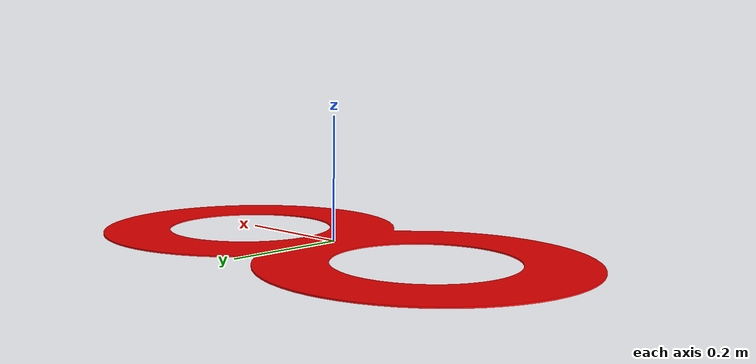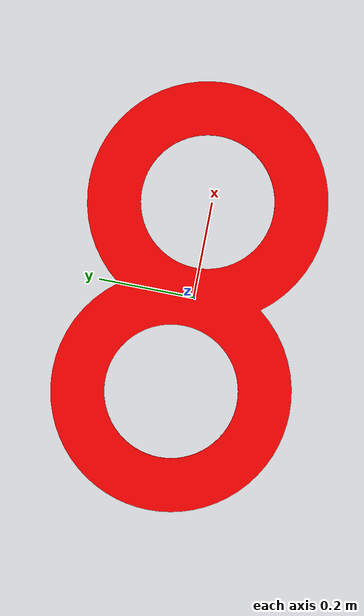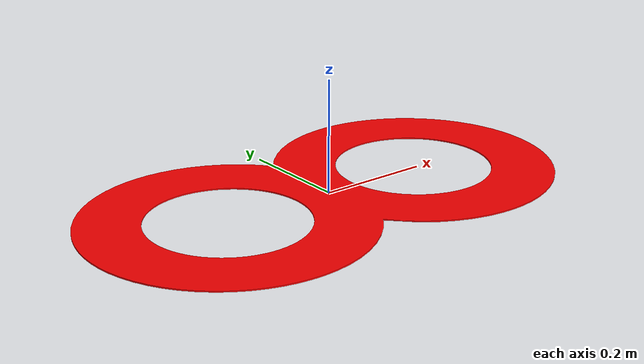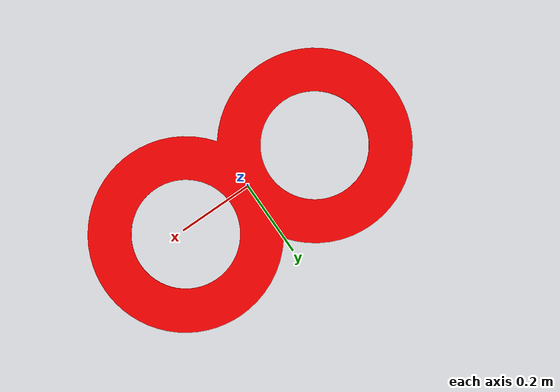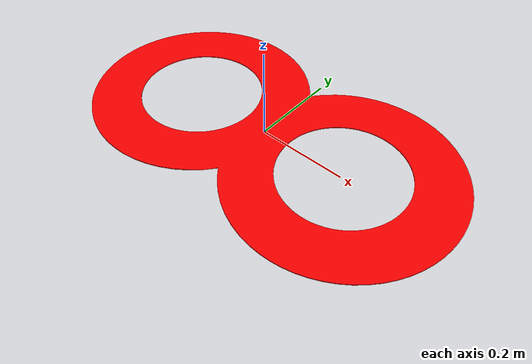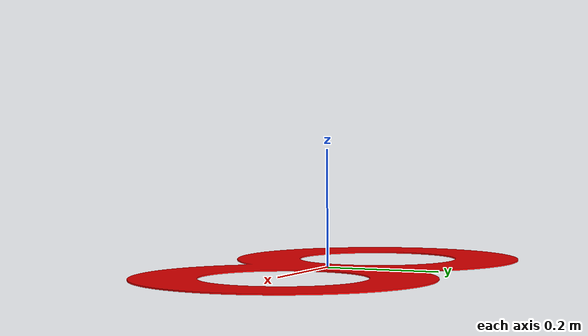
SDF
<?xml version="1.0" ?>
<sdf version="1.6">
    <model name="Infinity">
        <static>true</static>
        <link name="link">
            <collision name="Infinity_collision">
                <pose>0 0 0 0 0 0</pose>
                <geometry>
                    <cylinder>
                        <radius>0.05</radius>
                        <length>0.01</length>
                    </cylinder>
                </geometry>
            </collision>
            <visual name="Infinity_visual">
                <geometry>
                    <mesh>
                        <uri>model://Infinity/meshes/Infinity.dae</uri>
                    <scale>10 10 2</scale>
                    </mesh>
                </geometry>s
                <material>
                    <ambient>1 0 0 1</ambient>
                    <diffuse>1 0 0 1</diffuse>
                    <specular>0.1 0.1 0.1 1</specular>
                </material>
            </visual>
        </link>
    </model>
</sdf>
